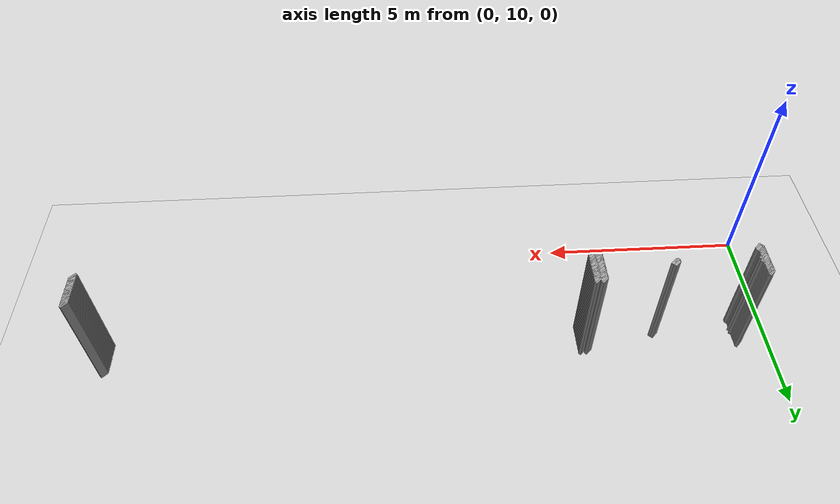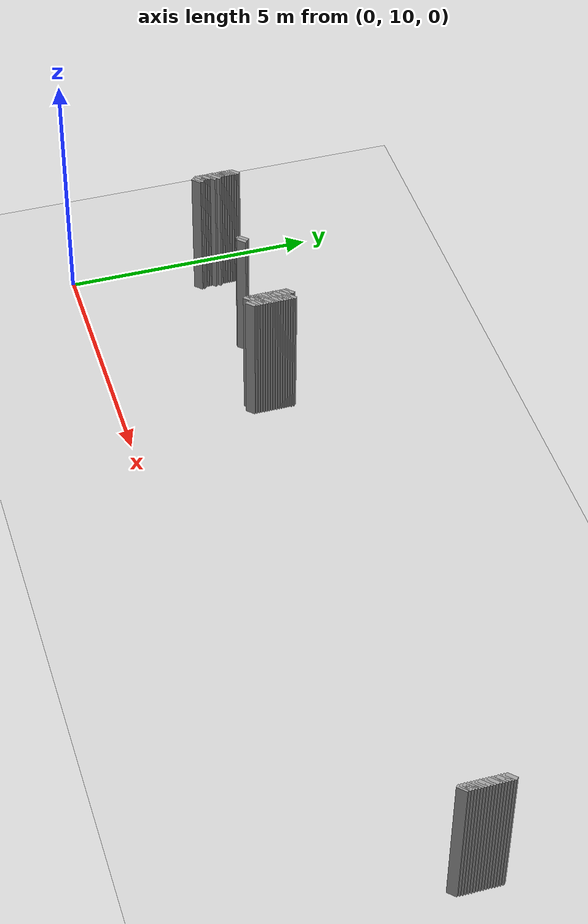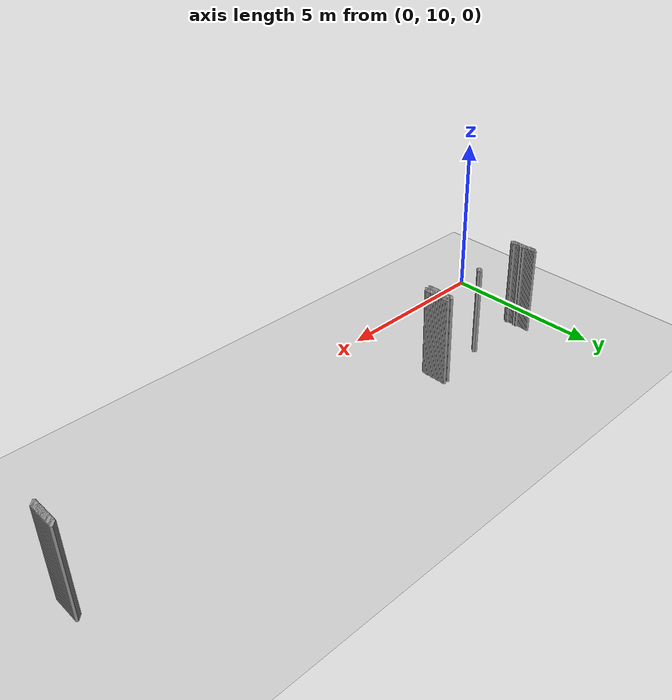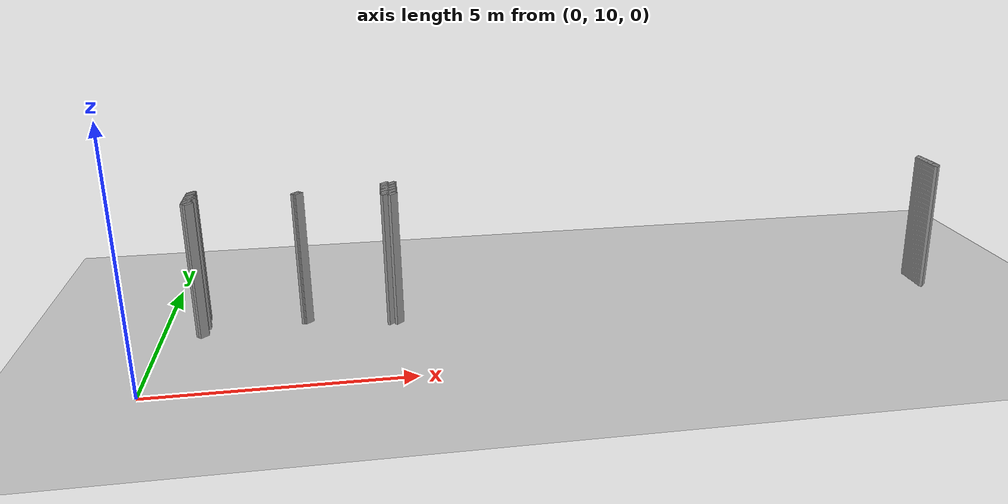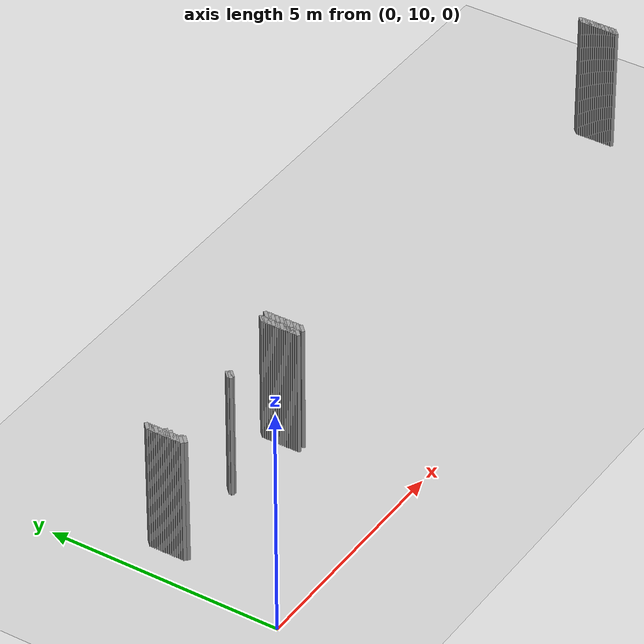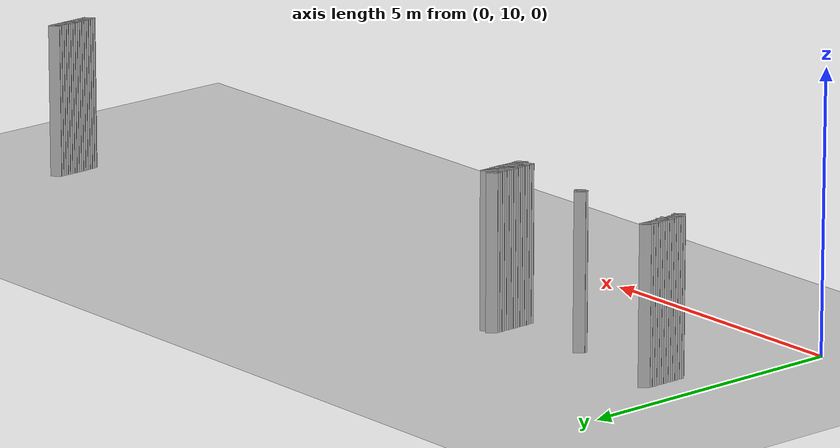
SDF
<sdf version="1.5">
 <world name="default">
  <include><uri>model://ground_plane</uri></include>
  <include><uri>model://sun</uri></include>
  <model name="grey_wall_1256">
   <static>1</static>
   <link name="link">
    <pose>0.75 13.3  1.4 0 0 -0.7853981633974549</pose>
    <collision name="collision">
     <geometry><box><size>0.07071067811865529 .2  2.8</size></box></geometry>
    </collision>
    <visual name="visual">
     <cast_shadows>0</cast_shadows>
     <geometry><box><size>0.07071067811865529 .2  2.8</size></box></geometry>
     <material>
      <script>
       <uri>model://grey_wall/materials/scripts</uri>
       <uri>model://grey_wall/materials/textures</uri>
       <name>vrc/grey_wall</name>
      </script>
     </material>
    </visual>
   </link>
  </model>
  <model name="grey_wall_1257">
   <static>1</static>
   <link name="link">
    <pose>4.55 13.3  1.4 0 0 -0.7853981633974483</pose>
    <collision name="collision">
     <geometry><box><size>0.07071067811865576 .2  2.8</size></box></geometry>
    </collision>
    <visual name="visual">
     <cast_shadows>0</cast_shadows>
     <geometry><box><size>0.07071067811865576 .2  2.8</size></box></geometry>
     <material>
      <script>
       <uri>model://grey_wall/materials/scripts</uri>
       <uri>model://grey_wall/materials/textures</uri>
       <name>vrc/grey_wall</name>
      </script>
     </material>
    </visual>
   </link>
  </model>
  <model name="grey_wall_1258">
   <static>1</static>
   <link name="link">
    <pose>4.7 13.3  1.4 0 0 -0.7853981633974483</pose>
    <collision name="collision">
     <geometry><box><size>0.07071067811865576 .2  2.8</size></box></geometry>
    </collision>
    <visual name="visual">
     <cast_shadows>0</cast_shadows>
     <geometry><box><size>0.07071067811865576 .2  2.8</size></box></geometry>
     <material>
      <script>
       <uri>model://grey_wall/materials/scripts</uri>
       <uri>model://grey_wall/materials/textures</uri>
       <name>vrc/grey_wall</name>
      </script>
     </material>
    </visual>
   </link>
  </model>
  <model name="grey_wall_1259">
   <static>1</static>
   <link name="link">
    <pose>16.45 13.3  1.4 0 0 -0.7853981633974838</pose>
    <collision name="collision">
     <geometry><box><size>0.07071067811865325 .2  2.8</size></box></geometry>
    </collision>
    <visual name="visual">
     <cast_shadows>0</cast_shadows>
     <geometry><box><size>0.07071067811865325 .2  2.8</size></box></geometry>
     <material>
      <script>
       <uri>model://grey_wall/materials/scripts</uri>
       <uri>model://grey_wall/materials/textures</uri>
       <name>vrc/grey_wall</name>
      </script>
     </material>
    </visual>
   </link>
  </model>
  <model name="grey_wall_1260">
   <static>1</static>
   <link name="link">
    <pose>0.75 13.25  1.4 0 0 -0.7853981633974549</pose>
    <collision name="collision">
     <geometry><box><size>0.07071067811865529 .2  2.8</size></box></geometry>
    </collision>
    <visual name="visual">
     <cast_shadows>0</cast_shadows>
     <geometry><box><size>0.07071067811865529 .2  2.8</size></box></geometry>
     <material>
      <script>
       <uri>model://grey_wall/materials/scripts</uri>
       <uri>model://grey_wall/materials/textures</uri>
       <name>vrc/grey_wall</name>
      </script>
     </material>
    </visual>
   </link>
  </model>
  <model name="grey_wall_1261">
   <static>1</static>
   <link name="link">
    <pose>4.55 13.25  1.4 0 0 -0.7853981633974483</pose>
    <collision name="collision">
     <geometry><box><size>0.07071067811865576 .2  2.8</size></box></geometry>
    </collision>
    <visual name="visual">
     <cast_shadows>0</cast_shadows>
     <geometry><box><size>0.07071067811865576 .2  2.8</size></box></geometry>
     <material>
      <script>
       <uri>model://grey_wall/materials/scripts</uri>
       <uri>model://grey_wall/materials/textures</uri>
       <name>vrc/grey_wall</name>
      </script>
     </material>
    </visual>
   </link>
  </model>
  <model name="grey_wall_1262">
   <static>1</static>
   <link name="link">
    <pose>4.7 13.25  1.4 0 0 -0.7853981633974483</pose>
    <collision name="collision">
     <geometry><box><size>0.07071067811865576 .2  2.8</size></box></geometry>
    </collision>
    <visual name="visual">
     <cast_shadows>0</cast_shadows>
     <geometry><box><size>0.07071067811865576 .2  2.8</size></box></geometry>
     <material>
      <script>
       <uri>model://grey_wall/materials/scripts</uri>
       <uri>model://grey_wall/materials/textures</uri>
       <name>vrc/grey_wall</name>
      </script>
     </material>
    </visual>
   </link>
  </model>
  <model name="grey_wall_1263">
   <static>1</static>
   <link name="link">
    <pose>16.45 13.25  1.4 0 0 -0.7853981633974838</pose>
    <collision name="collision">
     <geometry><box><size>0.07071067811865325 .2  2.8</size></box></geometry>
    </collision>
    <visual name="visual">
     <cast_shadows>0</cast_shadows>
     <geometry><box><size>0.07071067811865325 .2  2.8</size></box></geometry>
     <material>
      <script>
       <uri>model://grey_wall/materials/scripts</uri>
       <uri>model://grey_wall/materials/textures</uri>
       <name>vrc/grey_wall</name>
      </script>
     </material>
    </visual>
   </link>
  </model>
  <model name="grey_wall_1264">
   <static>1</static>
   <link name="link">
    <pose>0.75 13.200000000000001  1.4 0 0 -0.7853981633974549</pose>
    <collision name="collision">
     <geometry><box><size>0.07071067811865529 .2  2.8</size></box></geometry>
    </collision>
    <visual name="visual">
     <cast_shadows>0</cast_shadows>
     <geometry><box><size>0.07071067811865529 .2  2.8</size></box></geometry>
     <material>
      <script>
       <uri>model://grey_wall/materials/scripts</uri>
       <uri>model://grey_wall/materials/textures</uri>
       <name>vrc/grey_wall</name>
      </script>
     </material>
    </visual>
   </link>
  </model>
  <model name="grey_wall_1265">
   <static>1</static>
   <link name="link">
    <pose>4.55 13.200000000000001  1.4 0 0 -0.7853981633974483</pose>
    <collision name="collision">
     <geometry><box><size>0.07071067811865576 .2  2.8</size></box></geometry>
    </collision>
    <visual name="visual">
     <cast_shadows>0</cast_shadows>
     <geometry><box><size>0.07071067811865576 .2  2.8</size></box></geometry>
     <material>
      <script>
       <uri>model://grey_wall/materials/scripts</uri>
       <uri>model://grey_wall/materials/textures</uri>
       <name>vrc/grey_wall</name>
      </script>
     </material>
    </visual>
   </link>
  </model>
  <model name="grey_wall_1266">
   <static>1</static>
   <link name="link">
    <pose>4.7 13.200000000000001  1.4 0 0 -0.7853981633974483</pose>
    <collision name="collision">
     <geometry><box><size>0.07071067811865576 .2  2.8</size></box></geometry>
    </collision>
    <visual name="visual">
     <cast_shadows>0</cast_shadows>
     <geometry><box><size>0.07071067811865576 .2  2.8</size></box></geometry>
     <material>
      <script>
       <uri>model://grey_wall/materials/scripts</uri>
       <uri>model://grey_wall/materials/textures</uri>
       <name>vrc/grey_wall</name>
      </script>
     </material>
    </visual>
   </link>
  </model>
  <model name="grey_wall_1267">
   <static>1</static>
   <link name="link">
    <pose>16.45 13.200000000000001  1.4 0 0 -0.7853981633974838</pose>
    <collision name="collision">
     <geometry><box><size>0.07071067811865325 .2  2.8</size></box></geometry>
    </collision>
    <visual name="visual">
     <cast_shadows>0</cast_shadows>
     <geometry><box><size>0.07071067811865325 .2  2.8</size></box></geometry>
     <material>
      <script>
       <uri>model://grey_wall/materials/scripts</uri>
       <uri>model://grey_wall/materials/textures</uri>
       <name>vrc/grey_wall</name>
      </script>
     </material>
    </visual>
   </link>
  </model>
  <model name="grey_wall_1268">
   <static>1</static>
   <link name="link">
    <pose>0.75 13.15  1.4 0 0 -0.7853981633974549</pose>
    <collision name="collision">
     <geometry><box><size>0.07071067811865529 .2  2.8</size></box></geometry>
    </collision>
    <visual name="visual">
     <cast_shadows>0</cast_shadows>
     <geometry><box><size>0.07071067811865529 .2  2.8</size></box></geometry>
     <material>
      <script>
       <uri>model://grey_wall/materials/scripts</uri>
       <uri>model://grey_wall/materials/textures</uri>
       <name>vrc/grey_wall</name>
      </script>
     </material>
    </visual>
   </link>
  </model>
  <model name="grey_wall_1269">
   <static>1</static>
   <link name="link">
    <pose>4.55 13.15  1.4 0 0 -0.7853981633974483</pose>
    <collision name="collision">
     <geometry><box><size>0.07071067811865576 .2  2.8</size></box></geometry>
    </collision>
    <visual name="visual">
     <cast_shadows>0</cast_shadows>
     <geometry><box><size>0.07071067811865576 .2  2.8</size></box></geometry>
     <material>
      <script>
       <uri>model://grey_wall/materials/scripts</uri>
       <uri>model://grey_wall/materials/textures</uri>
       <name>vrc/grey_wall</name>
      </script>
     </material>
    </visual>
   </link>
  </model>
  <model name="grey_wall_1270">
   <static>1</static>
   <link name="link">
    <pose>4.7 13.15  1.4 0 0 -0.7853981633974483</pose>
    <collision name="collision">
     <geometry><box><size>0.07071067811865576 .2  2.8</size></box></geometry>
    </collision>
    <visual name="visual">
     <cast_shadows>0</cast_shadows>
     <geometry><box><size>0.07071067811865576 .2  2.8</size></box></geometry>
     <material>
      <script>
       <uri>model://grey_wall/materials/scripts</uri>
       <uri>model://grey_wall/materials/textures</uri>
       <name>vrc/grey_wall</name>
      </script>
     </material>
    </visual>
   </link>
  </model>
  <model name="grey_wall_1271">
   <static>1</static>
   <link name="link">
    <pose>16.45 13.15  1.4 0 0 -0.7853981633974838</pose>
    <collision name="collision">
     <geometry><box><size>0.07071067811865325 .2  2.8</size></box></geometry>
    </collision>
    <visual name="visual">
     <cast_shadows>0</cast_shadows>
     <geometry><box><size>0.07071067811865325 .2  2.8</size></box></geometry>
     <material>
      <script>
       <uri>model://grey_wall/materials/scripts</uri>
       <uri>model://grey_wall/materials/textures</uri>
       <name>vrc/grey_wall</name>
      </script>
     </material>
    </visual>
   </link>
  </model>
  <model name="grey_wall_1272">
   <static>1</static>
   <link name="link">
    <pose>0.75 13.100000000000001  1.4 0 0 -0.7853981633974549</pose>
    <collision name="collision">
     <geometry><box><size>0.07071067811865529 .2  2.8</size></box></geometry>
    </collision>
    <visual name="visual">
     <cast_shadows>0</cast_shadows>
     <geometry><box><size>0.07071067811865529 .2  2.8</size></box></geometry>
     <material>
      <script>
       <uri>model://grey_wall/materials/scripts</uri>
       <uri>model://grey_wall/materials/textures</uri>
       <name>vrc/grey_wall</name>
      </script>
     </material>
    </visual>
   </link>
  </model>
  <model name="grey_wall_1273">
   <static>1</static>
   <link name="link">
    <pose>4.55 13.100000000000001  1.4 0 0 -0.7853981633974483</pose>
    <collision name="collision">
     <geometry><box><size>0.07071067811865576 .2  2.8</size></box></geometry>
    </collision>
    <visual name="visual">
     <cast_shadows>0</cast_shadows>
     <geometry><box><size>0.07071067811865576 .2  2.8</size></box></geometry>
     <material>
      <script>
       <uri>model://grey_wall/materials/scripts</uri>
       <uri>model://grey_wall/materials/textures</uri>
       <name>vrc/grey_wall</name>
      </script>
     </material>
    </visual>
   </link>
  </model>
  <model name="grey_wall_1274">
   <static>1</static>
   <link name="link">
    <pose>4.7 13.100000000000001  1.4 0 0 -0.7853981633974483</pose>
    <collision name="collision">
     <geometry><box><size>0.07071067811865576 .2  2.8</size></box></geometry>
    </collision>
    <visual name="visual">
     <cast_shadows>0</cast_shadows>
     <geometry><box><size>0.07071067811865576 .2  2.8</size></box></geometry>
     <material>
      <script>
       <uri>model://grey_wall/materials/scripts</uri>
       <uri>model://grey_wall/materials/textures</uri>
       <name>vrc/grey_wall</name>
      </script>
     </material>
    </visual>
   </link>
  </model>
  <model name="grey_wall_1275">
   <static>1</static>
   <link name="link">
    <pose>16.45 13.100000000000001  1.4 0 0 -0.7853981633974838</pose>
    <collision name="collision">
     <geometry><box><size>0.07071067811865325 .2  2.8</size></box></geometry>
    </collision>
    <visual name="visual">
     <cast_shadows>0</cast_shadows>
     <geometry><box><size>0.07071067811865325 .2  2.8</size></box></geometry>
     <material>
      <script>
       <uri>model://grey_wall/materials/scripts</uri>
       <uri>model://grey_wall/materials/textures</uri>
       <name>vrc/grey_wall</name>
      </script>
     </material>
    </visual>
   </link>
  </model>
  <model name="grey_wall_1276">
   <static>1</static>
   <link name="link">
    <pose>0.75 13.05  1.4 0 0 -0.7853981633974549</pose>
    <collision name="collision">
     <geometry><box><size>0.07071067811865529 .2  2.8</size></box></geometry>
    </collision>
    <visual name="visual">
     <cast_shadows>0</cast_shadows>
     <geometry><box><size>0.07071067811865529 .2  2.8</size></box></geometry>
     <material>
      <script>
       <uri>model://grey_wall/materials/scripts</uri>
       <uri>model://grey_wall/materials/textures</uri>
       <name>vrc/grey_wall</name>
      </script>
     </material>
    </visual>
   </link>
  </model>
  <model name="grey_wall_1277">
   <static>1</static>
   <link name="link">
    <pose>4.55 13.05  1.4 0 0 -0.7853981633974483</pose>
    <collision name="collision">
     <geometry><box><size>0.07071067811865576 .2  2.8</size></box></geometry>
    </collision>
    <visual name="visual">
     <cast_shadows>0</cast_shadows>
     <geometry><box><size>0.07071067811865576 .2  2.8</size></box></geometry>
     <material>
      <script>
       <uri>model://grey_wall/materials/scripts</uri>
       <uri>model://grey_wall/materials/textures</uri>
       <name>vrc/grey_wall</name>
      </script>
     </material>
    </visual>
   </link>
  </model>
  <model name="grey_wall_1278">
   <static>1</static>
   <link name="link">
    <pose>4.7 13.05  1.4 0 0 -0.7853981633974483</pose>
    <collision name="collision">
     <geometry><box><size>0.07071067811865576 .2  2.8</size></box></geometry>
    </collision>
    <visual name="visual">
     <cast_shadows>0</cast_shadows>
     <geometry><box><size>0.07071067811865576 .2  2.8</size></box></geometry>
     <material>
      <script>
       <uri>model://grey_wall/materials/scripts</uri>
       <uri>model://grey_wall/materials/textures</uri>
       <name>vrc/grey_wall</name>
      </script>
     </material>
    </visual>
   </link>
  </model>
  <model name="grey_wall_1279">
   <static>1</static>
   <link name="link">
    <pose>16.45 13.05  1.4 0 0 -0.7853981633974838</pose>
    <collision name="collision">
     <geometry><box><size>0.07071067811865325 .2  2.8</size></box></geometry>
    </collision>
    <visual name="visual">
     <cast_shadows>0</cast_shadows>
     <geometry><box><size>0.07071067811865325 .2  2.8</size></box></geometry>
     <material>
      <script>
       <uri>model://grey_wall/materials/scripts</uri>
       <uri>model://grey_wall/materials/textures</uri>
       <name>vrc/grey_wall</name>
      </script>
     </material>
    </visual>
   </link>
  </model>
  <model name="grey_wall_1280">
   <static>1</static>
   <link name="link">
    <pose>0.75 13.0  1.4 0 0 -0.7853981633974549</pose>
    <collision name="collision">
     <geometry><box><size>0.07071067811865529 .2  2.8</size></box></geometry>
    </collision>
    <visual name="visual">
     <cast_shadows>0</cast_shadows>
     <geometry><box><size>0.07071067811865529 .2  2.8</size></box></geometry>
     <material>
      <script>
       <uri>model://grey_wall/materials/scripts</uri>
       <uri>model://grey_wall/materials/textures</uri>
       <name>vrc/grey_wall</name>
      </script>
     </material>
    </visual>
   </link>
  </model>
  <model name="grey_wall_1281">
   <static>1</static>
   <link name="link">
    <pose>4.55 13.0  1.4 0 0 -0.7853981633974483</pose>
    <collision name="collision">
     <geometry><box><size>0.07071067811865576 .2  2.8</size></box></geometry>
    </collision>
    <visual name="visual">
     <cast_shadows>0</cast_shadows>
     <geometry><box><size>0.07071067811865576 .2  2.8</size></box></geometry>
     <material>
      <script>
       <uri>model://grey_wall/materials/scripts</uri>
       <uri>model://grey_wall/materials/textures</uri>
       <name>vrc/grey_wall</name>
      </script>
     </material>
    </visual>
   </link>
  </model>
  <model name="grey_wall_1282">
   <static>1</static>
   <link name="link">
    <pose>4.7 13.0  1.4 0 0 -0.7853981633974483</pose>
    <collision name="collision">
     <geometry><box><size>0.07071067811865576 .2  2.8</size></box></geometry>
    </collision>
    <visual name="visual">
     <cast_shadows>0</cast_shadows>
     <geometry><box><size>0.07071067811865576 .2  2.8</size></box></geometry>
     <material>
      <script>
       <uri>model://grey_wall/materials/scripts</uri>
       <uri>model://grey_wall/materials/textures</uri>
       <name>vrc/grey_wall</name>
      </script>
     </material>
    </visual>
   </link>
  </model>
  <model name="grey_wall_1283">
   <static>1</static>
   <link name="link">
    <pose>16.45 13.0  1.4 0 0 -0.7853981633974838</pose>
    <collision name="collision">
     <geometry><box><size>0.07071067811865325 .2  2.8</size></box></geometry>
    </collision>
    <visual name="visual">
     <cast_shadows>0</cast_shadows>
     <geometry><box><size>0.07071067811865325 .2  2.8</size></box></geometry>
     <material>
      <script>
       <uri>model://grey_wall/materials/scripts</uri>
       <uri>model://grey_wall/materials/textures</uri>
       <name>vrc/grey_wall</name>
      </script>
     </material>
    </visual>
   </link>
  </model>
  <model name="grey_wall_1284">
   <static>1</static>
   <link name="link">
    <pose>0.75 12.950000000000001  1.4 0 0 -0.7853981633974549</pose>
    <collision name="collision">
     <geometry><box><size>0.07071067811865529 .2  2.8</size></box></geometry>
    </collision>
    <visual name="visual">
     <cast_shadows>0</cast_shadows>
     <geometry><box><size>0.07071067811865529 .2  2.8</size></box></geometry>
     <material>
      <script>
       <uri>model://grey_wall/materials/scripts</uri>
       <uri>model://grey_wall/materials/textures</uri>
       <name>vrc/grey_wall</name>
      </script>
     </material>
    </visual>
   </link>
  </model>
  <model name="grey_wall_1285">
   <static>1</static>
   <link name="link">
    <pose>4.55 12.950000000000001  1.4 0 0 -0.7853981633974483</pose>
    <collision name="collision">
     <geometry><box><size>0.07071067811865576 .2  2.8</size></box></geometry>
    </collision>
    <visual name="visual">
     <cast_shadows>0</cast_shadows>
     <geometry><box><size>0.07071067811865576 .2  2.8</size></box></geometry>
     <material>
      <script>
       <uri>model://grey_wall/materials/scripts</uri>
       <uri>model://grey_wall/materials/textures</uri>
       <name>vrc/grey_wall</name>
      </script>
     </material>
    </visual>
   </link>
  </model>
  <model name="grey_wall_1286">
   <static>1</static>
   <link name="link">
    <pose>4.7 12.950000000000001  1.4 0 0 -0.7853981633974483</pose>
    <collision name="collision">
     <geometry><box><size>0.07071067811865576 .2  2.8</size></box></geometry>
    </collision>
    <visual name="visual">
     <cast_shadows>0</cast_shadows>
     <geometry><box><size>0.07071067811865576 .2  2.8</size></box></geometry>
     <material>
      <script>
       <uri>model://grey_wall/materials/scripts</uri>
       <uri>model://grey_wall/materials/textures</uri>
       <name>vrc/grey_wall</name>
      </script>
     </material>
    </visual>
   </link>
  </model>
  <model name="grey_wall_1287">
   <static>1</static>
   <link name="link">
    <pose>16.45 12.950000000000001  1.4 0 0 -0.7853981633974838</pose>
    <collision name="collision">
     <geometry><box><size>0.07071067811865325 .2  2.8</size></box></geometry>
    </collision>
    <visual name="visual">
     <cast_shadows>0</cast_shadows>
     <geometry><box><size>0.07071067811865325 .2  2.8</size></box></geometry>
     <material>
      <script>
       <uri>model://grey_wall/materials/scripts</uri>
       <uri>model://grey_wall/materials/textures</uri>
       <name>vrc/grey_wall</name>
      </script>
     </material>
    </visual>
   </link>
  </model>
  <model name="grey_wall_1288">
   <static>1</static>
   <link name="link">
    <pose>0.75 12.9  1.4 0 0 -0.7853981633974549</pose>
    <collision name="collision">
     <geometry><box><size>0.07071067811865529 .2  2.8</size></box></geometry>
    </collision>
    <visual name="visual">
     <cast_shadows>0</cast_shadows>
     <geometry><box><size>0.07071067811865529 .2  2.8</size></box></geometry>
     <material>
      <script>
       <uri>model://grey_wall/materials/scripts</uri>
       <uri>model://grey_wall/materials/textures</uri>
       <name>vrc/grey_wall</name>
      </script>
     </material>
    </visual>
   </link>
  </model>
  <model name="grey_wall_1289">
   <static>1</static>
   <link name="link">
    <pose>0.8 12.9  1.4 0 0 -0.7853981633974549</pose>
    <collision name="collision">
     <geometry><box><size>0.07071067811865529 .2  2.8</size></box></geometry>
    </collision>
    <visual name="visual">
     <cast_shadows>0</cast_shadows>
     <geometry><box><size>0.07071067811865529 .2  2.8</size></box></geometry>
     <material>
      <script>
       <uri>model://grey_wall/materials/scripts</uri>
       <uri>model://grey_wall/materials/textures</uri>
       <name>vrc/grey_wall</name>
      </script>
     </material>
    </visual>
   </link>
  </model>
  <model name="grey_wall_1290">
   <static>1</static>
   <link name="link">
    <pose>2.8000000000000003 12.9  1.4 0 0 -0.7853981633974572</pose>
    <collision name="collision">
     <geometry><box><size>0.07071067811865513 .2  2.8</size></box></geometry>
    </collision>
    <visual name="visual">
     <cast_shadows>0</cast_shadows>
     <geometry><box><size>0.07071067811865513 .2  2.8</size></box></geometry>
     <material>
      <script>
       <uri>model://grey_wall/materials/scripts</uri>
       <uri>model://grey_wall/materials/textures</uri>
       <name>vrc/grey_wall</name>
      </script>
     </material>
    </visual>
   </link>
  </model>
  <model name="grey_wall_1291">
   <static>1</static>
   <link name="link">
    <pose>4.55 12.9  1.4 0 0 -0.7853981633974483</pose>
    <collision name="collision">
     <geometry><box><size>0.07071067811865576 .2  2.8</size></box></geometry>
    </collision>
    <visual name="visual">
     <cast_shadows>0</cast_shadows>
     <geometry><box><size>0.07071067811865576 .2  2.8</size></box></geometry>
     <material>
      <script>
       <uri>model://grey_wall/materials/scripts</uri>
       <uri>model://grey_wall/materials/textures</uri>
       <name>vrc/grey_wall</name>
      </script>
     </material>
    </visual>
   </link>
  </model>
  <model name="grey_wall_1292">
   <static>1</static>
   <link name="link">
    <pose>4.7 12.9  1.4 0 0 -0.7853981633974483</pose>
    <collision name="collision">
     <geometry><box><size>0.07071067811865576 .2  2.8</size></box></geometry>
    </collision>
    <visual name="visual">
     <cast_shadows>0</cast_shadows>
     <geometry><box><size>0.07071067811865576 .2  2.8</size></box></geometry>
     <material>
      <script>
       <uri>model://grey_wall/materials/scripts</uri>
       <uri>model://grey_wall/materials/textures</uri>
       <name>vrc/grey_wall</name>
      </script>
     </material>
    </visual>
   </link>
  </model>
  <model name="grey_wall_1293">
   <static>1</static>
   <link name="link">
    <pose>16.45 12.9  1.4 0 0 -0.7853981633974838</pose>
    <collision name="collision">
     <geometry><box><size>0.07071067811865325 .2  2.8</size></box></geometry>
    </collision>
    <visual name="visual">
     <cast_shadows>0</cast_shadows>
     <geometry><box><size>0.07071067811865325 .2  2.8</size></box></geometry>
     <material>
      <script>
       <uri>model://grey_wall/materials/scripts</uri>
       <uri>model://grey_wall/materials/textures</uri>
       <name>vrc/grey_wall</name>
      </script>
     </material>
    </visual>
   </link>
  </model>
  <model name="grey_wall_1294">
   <static>1</static>
   <link name="link">
    <pose>0.75 12.850000000000001  1.4 0 0 -0.7853981633974549</pose>
    <collision name="collision">
     <geometry><box><size>0.07071067811865529 .2  2.8</size></box></geometry>
    </collision>
    <visual name="visual">
     <cast_shadows>0</cast_shadows>
     <geometry><box><size>0.07071067811865529 .2  2.8</size></box></geometry>
     <material>
      <script>
       <uri>model://grey_wall/materials/scripts</uri>
       <uri>model://grey_wall/materials/textures</uri>
       <name>vrc/grey_wall</name>
      </script>
     </material>
    </visual>
   </link>
  </model>
  <model name="grey_wall_1295">
   <static>1</static>
   <link name="link">
    <pose>2.8000000000000003 12.850000000000001  1.4 0 0 -0.7853981633974572</pose>
    <collision name="collision">
     <geometry><box><size>0.07071067811865513 .2  2.8</size></box></geometry>
    </collision>
    <visual name="visual">
     <cast_shadows>0</cast_shadows>
     <geometry><box><size>0.07071067811865513 .2  2.8</size></box></geometry>
     <material>
      <script>
       <uri>model://grey_wall/materials/scripts</uri>
       <uri>model://grey_wall/materials/textures</uri>
       <name>vrc/grey_wall</name>
      </script>
     </material>
    </visual>
   </link>
  </model>
  <model name="grey_wall_1296">
   <static>1</static>
   <link name="link">
    <pose>2.85 12.850000000000001  1.4 0 0 -0.7853981633974572</pose>
    <collision name="collision">
     <geometry><box><size>0.07071067811865513 .2  2.8</size></box></geometry>
    </collision>
    <visual name="visual">
     <cast_shadows>0</cast_shadows>
     <geometry><box><size>0.07071067811865513 .2  2.8</size></box></geometry>
     <material>
      <script>
       <uri>model://grey_wall/materials/scripts</uri>
       <uri>model://grey_wall/materials/textures</uri>
       <name>vrc/grey_wall</name>
      </script>
     </material>
    </visual>
   </link>
  </model>
  <model name="grey_wall_1297">
   <static>1</static>
   <link name="link">
    <pose>4.55 12.850000000000001  1.4 0 0 -0.7853981633974483</pose>
    <collision name="collision">
     <geometry><box><size>0.07071067811865576 .2  2.8</size></box></geometry>
    </collision>
    <visual name="visual">
     <cast_shadows>0</cast_shadows>
     <geometry><box><size>0.07071067811865576 .2  2.8</size></box></geometry>
     <material>
      <script>
       <uri>model://grey_wall/materials/scripts</uri>
       <uri>model://grey_wall/materials/textures</uri>
       <name>vrc/grey_wall</name>
      </script>
     </material>
    </visual>
   </link>
  </model>
  <model name="grey_wall_1298">
   <static>1</static>
   <link name="link">
    <pose>4.7 12.850000000000001  1.4 0 0 -0.7853981633974483</pose>
    <collision name="collision">
     <geometry><box><size>0.07071067811865576 .2  2.8</size></box></geometry>
    </collision>
    <visual name="visual">
     <cast_shadows>0</cast_shadows>
     <geometry><box><size>0.07071067811865576 .2  2.8</size></box></geometry>
     <material>
      <script>
       <uri>model://grey_wall/materials/scripts</uri>
       <uri>model://grey_wall/materials/textures</uri>
       <name>vrc/grey_wall</name>
      </script>
     </material>
    </visual>
   </link>
  </model>
  <model name="grey_wall_1299">
   <static>1</static>
   <link name="link">
    <pose>16.45 12.850000000000001  1.4 0 0 -0.7853981633974838</pose>
    <collision name="collision">
     <geometry><box><size>0.07071067811865325 .2  2.8</size></box></geometry>
    </collision>
    <visual name="visual">
     <cast_shadows>0</cast_shadows>
     <geometry><box><size>0.07071067811865325 .2  2.8</size></box></geometry>
     <material>
      <script>
       <uri>model://grey_wall/materials/scripts</uri>
       <uri>model://grey_wall/materials/textures</uri>
       <name>vrc/grey_wall</name>
      </script>
     </material>
    </visual>
   </link>
  </model>
  <model name="grey_wall_1300">
   <static>1</static>
   <link name="link">
    <pose>0.75 12.8  1.4 0 0 -0.7853981633974549</pose>
    <collision name="collision">
     <geometry><box><size>0.07071067811865529 .2  2.8</size></box></geometry>
    </collision>
    <visual name="visual">
     <cast_shadows>0</cast_shadows>
     <geometry><box><size>0.07071067811865529 .2  2.8</size></box></geometry>
     <material>
      <script>
       <uri>model://grey_wall/materials/scripts</uri>
       <uri>model://grey_wall/materials/textures</uri>
       <name>vrc/grey_wall</name>
      </script>
     </material>
    </visual>
   </link>
  </model>
  <model name="grey_wall_1301">
   <static>1</static>
   <link name="link">
    <pose>0.8 12.8  1.4 0 0 -0.7853981633974549</pose>
    <collision name="collision">
     <geometry><box><size>0.07071067811865529 .2  2.8</size></box></geometry>
    </collision>
    <visual name="visual">
     <cast_shadows>0</cast_shadows>
     <geometry><box><size>0.07071067811865529 .2  2.8</size></box></geometry>
     <material>
      <script>
       <uri>model://grey_wall/materials/scripts</uri>
       <uri>model://grey_wall/materials/textures</uri>
       <name>vrc/grey_wall</name>
      </script>
     </material>
    </visual>
   </link>
  </model>
  <model name="grey_wall_1302">
   <static>1</static>
   <link name="link">
    <pose>4.55 12.8  1.4 0 0 -0.7853981633974483</pose>
    <collision name="collision">
     <geometry><box><size>0.07071067811865576 .2  2.8</size></box></geometry>
    </collision>
    <visual name="visual">
     <cast_shadows>0</cast_shadows>
     <geometry><box><size>0.07071067811865576 .2  2.8</size></box></geometry>
     <material>
      <script>
       <uri>model://grey_wall/materials/scripts</uri>
       <uri>model://grey_wall/materials/textures</uri>
       <name>vrc/grey_wall</name>
      </script>
     </material>
    </visual>
   </link>
  </model>
  <model name="grey_wall_1303">
   <static>1</static>
   <link name="link">
    <pose>4.7 12.8  1.4 0 0 -0.7853981633974483</pose>
    <collision name="collision">
     <geometry><box><size>0.07071067811865576 .2  2.8</size></box></geometry>
    </collision>
    <visual name="visual">
     <cast_shadows>0</cast_shadows>
     <geometry><box><size>0.07071067811865576 .2  2.8</size></box></geometry>
     <material>
      <script>
       <uri>model://grey_wall/materials/scripts</uri>
       <uri>model://grey_wall/materials/textures</uri>
       <name>vrc/grey_wall</name>
      </script>
     </material>
    </visual>
   </link>
  </model>
  <model name="grey_wall_1304">
   <static>1</static>
   <link name="link">
    <pose>16.45 12.8  1.4 0 0 -0.7853981633974838</pose>
    <collision name="collision">
     <geometry><box><size>0.07071067811865325 .2  2.8</size></box></geometry>
    </collision>
    <visual name="visual">
     <cast_shadows>0</cast_shadows>
     <geometry><box><size>0.07071067811865325 .2  2.8</size></box></geometry>
     <material>
      <script>
       <uri>model://grey_wall/materials/scripts</uri>
       <uri>model://grey_wall/materials/textures</uri>
       <name>vrc/grey_wall</name>
      </script>
     </material>
    </visual>
   </link>
  </model>
  <model name="grey_wall_1305">
   <static>1</static>
   <link name="link">
    <pose>0.75 12.75  1.4 0 0 -0.7853981633974549</pose>
    <collision name="collision">
     <geometry><box><size>0.07071067811865529 .2  2.8</size></box></geometry>
    </collision>
    <visual name="visual">
     <cast_shadows>0</cast_shadows>
     <geometry><box><size>0.07071067811865529 .2  2.8</size></box></geometry>
     <material>
      <script>
       <uri>model://grey_wall/materials/scripts</uri>
       <uri>model://grey_wall/materials/textures</uri>
       <name>vrc/grey_wall</name>
      </script>
     </material>
    </visual>
   </link>
  </model>
  <model name="grey_wall_1306">
   <static>1</static>
   <link name="link">
    <pose>4.55 12.75  1.4 0 0 -0.7853981633974483</pose>
    <collision name="collision">
     <geometry><box><size>0.07071067811865576 .2  2.8</size></box></geometry>
    </collision>
    <visual name="visual">
     <cast_shadows>0</cast_shadows>
     <geometry><box><size>0.07071067811865576 .2  2.8</size></box></geometry>
     <material>
      <script>
       <uri>model://grey_wall/materials/scripts</uri>
       <uri>model://grey_wall/materials/textures</uri>
       <name>vrc/grey_wall</name>
      </script>
     </material>
    </visual>
   </link>
  </model>
  <model name="grey_wall_1307">
   <static>1</static>
   <link name="link">
    <pose>4.7 12.75  1.4 0 0 -0.7853981633974483</pose>
    <collision name="collision">
     <geometry><box><size>0.07071067811865576 .2  2.8</size></box></geometry>
    </collision>
    <visual name="visual">
     <cast_shadows>0</cast_shadows>
     <geometry><box><size>0.07071067811865576 .2  2.8</size></box></geometry>
     <material>
      <script>
       <uri>model://grey_wall/materials/scripts</uri>
       <uri>model://grey_wall/materials/textures</uri>
       <name>vrc/grey_wall</name>
      </script>
     </material>
    </visual>
   </link>
  </model>
  <model name="grey_wall_1308">
   <static>1</static>
   <link name="link">
    <pose>16.45 12.75  1.4 0 0 -0.7853981633974838</pose>
    <collision name="collision">
     <geometry><box><size>0.07071067811865325 .2  2.8</size></box></geometry>
    </collision>
    <visual name="visual">
     <cast_shadows>0</cast_shadows>
     <geometry><box><size>0.07071067811865325 .2  2.8</size></box></geometry>
     <material>
      <script>
       <uri>model://grey_wall/materials/scripts</uri>
       <uri>model://grey_wall/materials/textures</uri>
       <name>vrc/grey_wall</name>
      </script>
     </material>
    </visual>
   </link>
  </model>
  <model name="grey_wall_1309">
   <static>1</static>
   <link name="link">
    <pose>0.75 12.700000000000001  1.4 0 0 -0.7853981633974549</pose>
    <collision name="collision">
     <geometry><box><size>0.07071067811865529 .2  2.8</size></box></geometry>
    </collision>
    <visual name="visual">
     <cast_shadows>0</cast_shadows>
     <geometry><box><size>0.07071067811865529 .2  2.8</size></box></geometry>
     <material>
      <script>
       <uri>model://grey_wall/materials/scripts</uri>
       <uri>model://grey_wall/materials/textures</uri>
       <name>vrc/grey_wall</name>
      </script>
     </material>
    </visual>
   </link>
  </model>
  <model name="grey_wall_1310">
   <static>1</static>
   <link name="link">
    <pose>4.55 12.700000000000001  1.4 0 0 -0.7853981633974483</pose>
    <collision name="collision">
     <geometry><box><size>0.07071067811865576 .2  2.8</size></box></geometry>
    </collision>
    <visual name="visual">
     <cast_shadows>0</cast_shadows>
     <geometry><box><size>0.07071067811865576 .2  2.8</size></box></geometry>
     <material>
      <script>
       <uri>model://grey_wall/materials/scripts</uri>
       <uri>model://grey_wall/materials/textures</uri>
       <name>vrc/grey_wall</name>
      </script>
     </material>
    </visual>
   </link>
  </model>
  <model name="grey_wall_1311">
   <static>1</static>
   <link name="link">
    <pose>4.7 12.700000000000001  1.4 0 0 -0.7853981633974483</pose>
    <collision name="collision">
     <geometry><box><size>0.07071067811865576 .2  2.8</size></box></geometry>
    </collision>
    <visual name="visual">
     <cast_shadows>0</cast_shadows>
     <geometry><box><size>0.07071067811865576 .2  2.8</size></box></geometry>
     <material>
      <script>
       <uri>model://grey_wall/materials/scripts</uri>
       <uri>model://grey_wall/materials/textures</uri>
       <name>vrc/grey_wall</name>
      </script>
     </material>
    </visual>
   </link>
  </model>
  <model name="grey_wall_1312">
   <static>1</static>
   <link name="link">
    <pose>16.45 12.700000000000001  1.4 0 0 -0.7853981633974838</pose>
    <collision name="collision">
     <geometry><box><size>0.07071067811865325 .2  2.8</size></box></geometry>
    </collision>
    <visual name="visual">
     <cast_shadows>0</cast_shadows>
     <geometry><box><size>0.07071067811865325 .2  2.8</size></box></geometry>
     <material>
      <script>
       <uri>model://grey_wall/materials/scripts</uri>
       <uri>model://grey_wall/materials/textures</uri>
       <name>vrc/grey_wall</name>
      </script>
     </material>
    </visual>
   </link>
  </model>
  <model name="grey_wall_1313">
   <static>1</static>
   <link name="link">
    <pose>0.75 12.65  1.4 0 0 -0.7853981633974549</pose>
    <collision name="collision">
     <geometry><box><size>0.07071067811865529 .2  2.8</size></box></geometry>
    </collision>
    <visual name="visual">
     <cast_shadows>0</cast_shadows>
     <geometry><box><size>0.07071067811865529 .2  2.8</size></box></geometry>
     <material>
      <script>
       <uri>model://grey_wall/materials/scripts</uri>
       <uri>model://grey_wall/materials/textures</uri>
       <name>vrc/grey_wall</name>
      </script>
     </material>
    </visual>
   </link>
  </model>
  <model name="grey_wall_1314">
   <static>1</static>
   <link name="link">
    <pose>4.55 12.65  1.4 0 0 -0.7853981633974483</pose>
    <collision name="collision">
     <geometry><box><size>0.07071067811865576 .2  2.8</size></box></geometry>
    </collision>
    <visual name="visual">
     <cast_shadows>0</cast_shadows>
     <geometry><box><size>0.07071067811865576 .2  2.8</size></box></geometry>
     <material>
      <script>
       <uri>model://grey_wall/materials/scripts</uri>
       <uri>model://grey_wall/materials/textures</uri>
       <name>vrc/grey_wall</name>
      </script>
     </material>
    </visual>
   </link>
  </model>
  <model name="grey_wall_1315">
   <static>1</static>
   <link name="link">
    <pose>4.7 12.65  1.4 0 0 -0.7853981633974483</pose>
    <collision name="collision">
     <geometry><box><size>0.07071067811865576 .2  2.8</size></box></geometry>
    </collision>
    <visual name="visual">
     <cast_shadows>0</cast_shadows>
     <geometry><box><size>0.07071067811865576 .2  2.8</size></box></geometry>
     <material>
      <script>
       <uri>model://grey_wall/materials/scripts</uri>
       <uri>model://grey_wall/materials/textures</uri>
       <name>vrc/grey_wall</name>
      </script>
     </material>
    </visual>
   </link>
  </model>
  <model name="grey_wall_1316">
   <static>1</static>
   <link name="link">
    <pose>16.45 12.65  1.4 0 0 -0.7853981633974838</pose>
    <collision name="collision">
     <geometry><box><size>0.07071067811865325 .2  2.8</size></box></geometry>
    </collision>
    <visual name="visual">
     <cast_shadows>0</cast_shadows>
     <geometry><box><size>0.07071067811865325 .2  2.8</size></box></geometry>
     <material>
      <script>
       <uri>model://grey_wall/materials/scripts</uri>
       <uri>model://grey_wall/materials/textures</uri>
       <name>vrc/grey_wall</name>
      </script>
     </material>
    </visual>
   </link>
  </model>
  <model name="grey_wall_1317">
   <static>1</static>
   <link name="link">
    <pose>0.75 12.600000000000001  1.4 0 0 -0.7853981633974549</pose>
    <collision name="collision">
     <geometry><box><size>0.07071067811865529 .2  2.8</size></box></geometry>
    </collision>
    <visual name="visual">
     <cast_shadows>0</cast_shadows>
     <geometry><box><size>0.07071067811865529 .2  2.8</size></box></geometry>
     <material>
      <script>
       <uri>model://grey_wall/materials/scripts</uri>
       <uri>model://grey_wall/materials/textures</uri>
       <name>vrc/grey_wall</name>
      </script>
     </material>
    </visual>
   </link>
  </model>
  <model name="grey_wall_1318">
   <static>1</static>
   <link name="link">
    <pose>4.55 12.600000000000001  1.4 0 0 -0.7853981633974483</pose>
    <collision name="collision">
     <geometry><box><size>0.07071067811865576 .2  2.8</size></box></geometry>
    </collision>
    <visual name="visual">
     <cast_shadows>0</cast_shadows>
     <geometry><box><size>0.07071067811865576 .2  2.8</size></box></geometry>
     <material>
      <script>
       <uri>model://grey_wall/materials/scripts</uri>
       <uri>model://grey_wall/materials/textures</uri>
       <name>vrc/grey_wall</name>
      </script>
     </material>
    </visual>
   </link>
  </model>
  <model name="grey_wall_1319">
   <static>1</static>
   <link name="link">
    <pose>4.7 12.600000000000001  1.4 0 0 -0.7853981633974483</pose>
    <collision name="collision">
     <geometry><box><size>0.07071067811865576 .2  2.8</size></box></geometry>
    </collision>
    <visual name="visual">
     <cast_shadows>0</cast_shadows>
     <geometry><box><size>0.07071067811865576 .2  2.8</size></box></geometry>
     <material>
      <script>
       <uri>model://grey_wall/materials/scripts</uri>
       <uri>model://grey_wall/materials/textures</uri>
       <name>vrc/grey_wall</name>
      </script>
     </material>
    </visual>
   </link>
  </model>
  <model name="grey_wall_1320">
   <static>1</static>
   <link name="link">
    <pose>16.45 12.600000000000001  1.4 0 0 -0.7853981633974838</pose>
    <collision name="collision">
     <geometry><box><size>0.07071067811865325 .2  2.8</size></box></geometry>
    </collision>
    <visual name="visual">
     <cast_shadows>0</cast_shadows>
     <geometry><box><size>0.07071067811865325 .2  2.8</size></box></geometry>
     <material>
      <script>
       <uri>model://grey_wall/materials/scripts</uri>
       <uri>model://grey_wall/materials/textures</uri>
       <name>vrc/grey_wall</name>
      </script>
     </material>
    </visual>
   </link>
  </model>
  <model name="grey_wall_1321">
   <static>1</static>
   <link name="link">
    <pose>0.75 12.55  1.4 0 0 -0.7853981633974549</pose>
    <collision name="collision">
     <geometry><box><size>0.07071067811865529 .2  2.8</size></box></geometry>
    </collision>
    <visual name="visual">
     <cast_shadows>0</cast_shadows>
     <geometry><box><size>0.07071067811865529 .2  2.8</size></box></geometry>
     <material>
      <script>
       <uri>model://grey_wall/materials/scripts</uri>
       <uri>model://grey_wall/materials/textures</uri>
       <name>vrc/grey_wall</name>
      </script>
     </material>
    </visual>
   </link>
  </model>
  <model name="grey_wall_1322">
   <static>1</static>
   <link name="link">
    <pose>0.8 12.55  1.4 0 0 -0.7853981633974549</pose>
    <collision name="collision">
     <geometry><box><size>0.07071067811865529 .2  2.8</size></box></geometry>
    </collision>
    <visual name="visual">
     <cast_shadows>0</cast_shadows>
     <geometry><box><size>0.07071067811865529 .2  2.8</size></box></geometry>
     <material>
      <script>
       <uri>model://grey_wall/materials/scripts</uri>
       <uri>model://grey_wall/materials/textures</uri>
       <name>vrc/grey_wall</name>
      </script>
     </material>
    </visual>
   </link>
  </model>
  <model name="grey_wall_1323">
   <static>1</static>
   <link name="link">
    <pose>4.55 12.55  1.4 0 0 -0.7853981633974483</pose>
    <collision name="collision">
     <geometry><box><size>0.07071067811865576 .2  2.8</size></box></geometry>
    </collision>
    <visual name="visual">
     <cast_shadows>0</cast_shadows>
     <geometry><box><size>0.07071067811865576 .2  2.8</size></box></geometry>
     <material>
      <script>
       <uri>model://grey_wall/materials/scripts</uri>
       <uri>model://grey_wall/materials/textures</uri>
       <name>vrc/grey_wall</name>
      </script>
     </material>
    </visual>
   </link>
  </model>
  <model name="grey_wall_1324">
   <static>1</static>
   <link name="link">
    <pose>4.7 12.55  1.4 0 0 -0.7853981633974483</pose>
    <collision name="collision">
     <geometry><box><size>0.07071067811865576 .2  2.8</size></box></geometry>
    </collision>
    <visual name="visual">
     <cast_shadows>0</cast_shadows>
     <geometry><box><size>0.07071067811865576 .2  2.8</size></box></geometry>
     <material>
      <script>
       <uri>model://grey_wall/materials/scripts</uri>
       <uri>model://grey_wall/materials/textures</uri>
       <name>vrc/grey_wall</name>
      </script>
     </material>
    </visual>
   </link>
  </model>
  <model name="grey_wall_1325">
   <static>1</static>
   <link name="link">
    <pose>16.45 12.55  1.4 0 0 -0.7853981633974838</pose>
    <collision name="collision">
     <geometry><box><size>0.07071067811865325 .2  2.8</size></box></geometry>
    </collision>
    <visual name="visual">
     <cast_shadows>0</cast_shadows>
     <geometry><box><size>0.07071067811865325 .2  2.8</size></box></geometry>
     <material>
      <script>
       <uri>model://grey_wall/materials/scripts</uri>
       <uri>model://grey_wall/materials/textures</uri>
       <name>vrc/grey_wall</name>
      </script>
     </material>
    </visual>
   </link>
  </model>
  <model name="grey_wall_1326">
   <static>1</static>
   <link name="link">
    <pose>0.8 12.5  1.4 0 0 -0.7853981633974549</pose>
    <collision name="collision">
     <geometry><box><size>0.07071067811865529 .2  2.8</size></box></geometry>
    </collision>
    <visual name="visual">
     <cast_shadows>0</cast_shadows>
     <geometry><box><size>0.07071067811865529 .2  2.8</size></box></geometry>
     <material>
      <script>
       <uri>model://grey_wall/materials/scripts</uri>
       <uri>model://grey_wall/materials/textures</uri>
       <name>vrc/grey_wall</name>
      </script>
     </material>
    </visual>
   </link>
  </model>
  <model name="grey_wall_1327">
   <static>1</static>
   <link name="link">
    <pose>4.55 12.5  1.4 0 0 -0.7853981633974483</pose>
    <collision name="collision">
     <geometry><box><size>0.07071067811865576 .2  2.8</size></box></geometry>
    </collision>
    <visual name="visual">
     <cast_shadows>0</cast_shadows>
     <geometry><box><size>0.07071067811865576 .2  2.8</size></box></geometry>
     <material>
      <script>
       <uri>model://grey_wall/materials/scripts</uri>
       <uri>model://grey_wall/materials/textures</uri>
       <name>vrc/grey_wall</name>
      </script>
     </material>
    </visual>
   </link>
  </model>
  <model name="grey_wall_1328">
   <static>1</static>
   <link name="link">
    <pose>4.7 12.5  1.4 0 0 -0.7853981633974483</pose>
    <collision name="collision">
     <geometry><box><size>0.07071067811865576 .2  2.8</size></box></geometry>
    </collision>
    <visual name="visual">
     <cast_shadows>0</cast_shadows>
     <geometry><box><size>0.07071067811865576 .2  2.8</size></box></geometry>
     <material>
      <script>
       <uri>model://grey_wall/materials/scripts</uri>
       <uri>model://grey_wall/materials/textures</uri>
       <name>vrc/grey_wall</name>
      </script>
     </material>
    </visual>
   </link>
  </model>
  <model name="grey_wall_1329">
   <static>1</static>
   <link name="link">
    <pose>16.45 12.5  1.4 0 0 -0.7853981633974838</pose>
    <collision name="collision">
     <geometry><box><size>0.07071067811865325 .2  2.8</size></box></geometry>
    </collision>
    <visual name="visual">
     <cast_shadows>0</cast_shadows>
     <geometry><box><size>0.07071067811865325 .2  2.8</size></box></geometry>
     <material>
      <script>
       <uri>model://grey_wall/materials/scripts</uri>
       <uri>model://grey_wall/materials/textures</uri>
       <name>vrc/grey_wall</name>
      </script>
     </material>
    </visual>
   </link>
  </model>
 </world>
</sdf>
